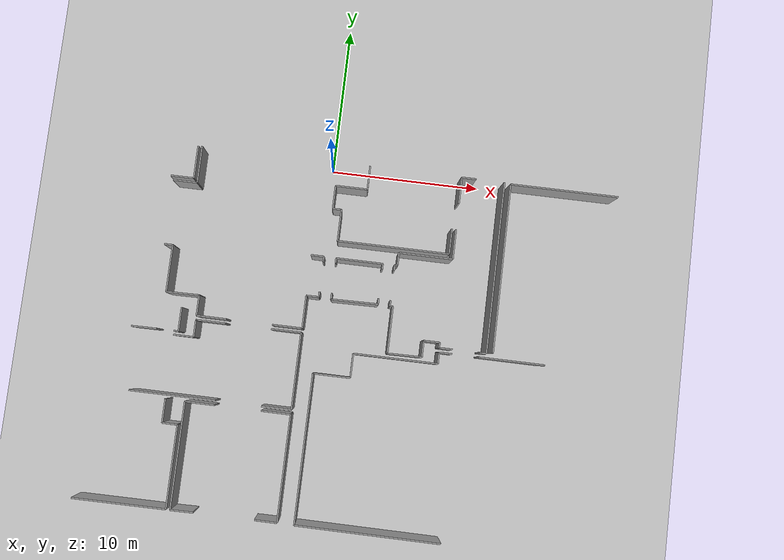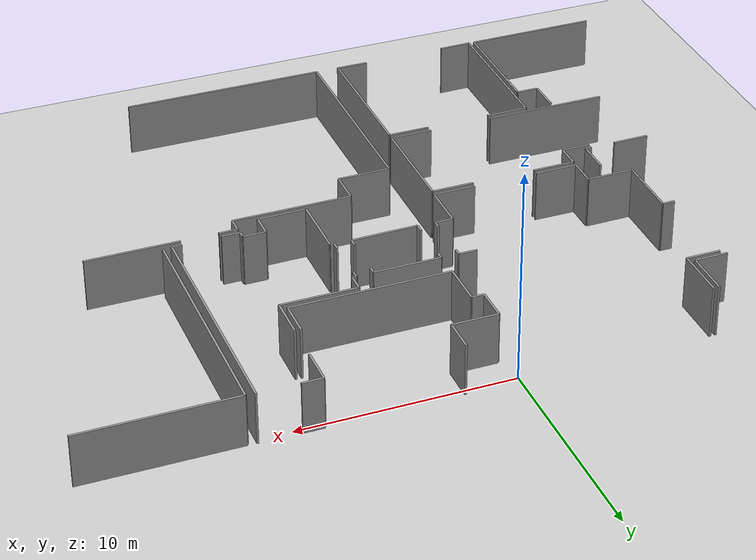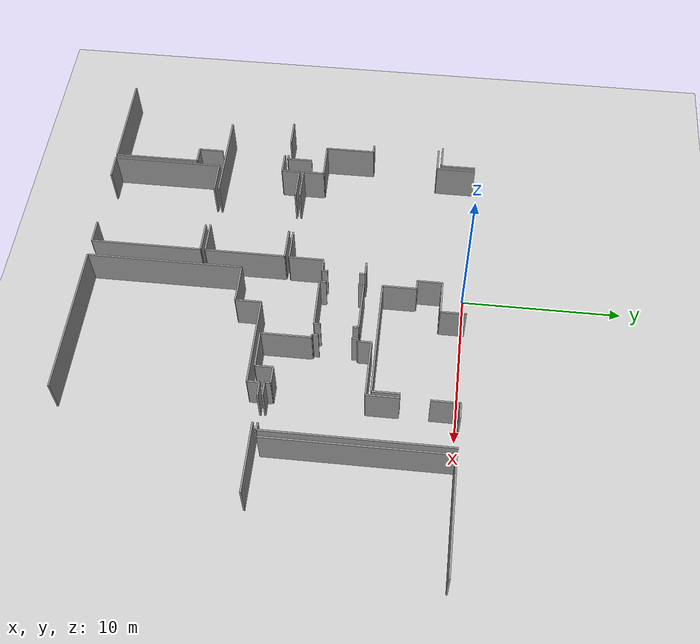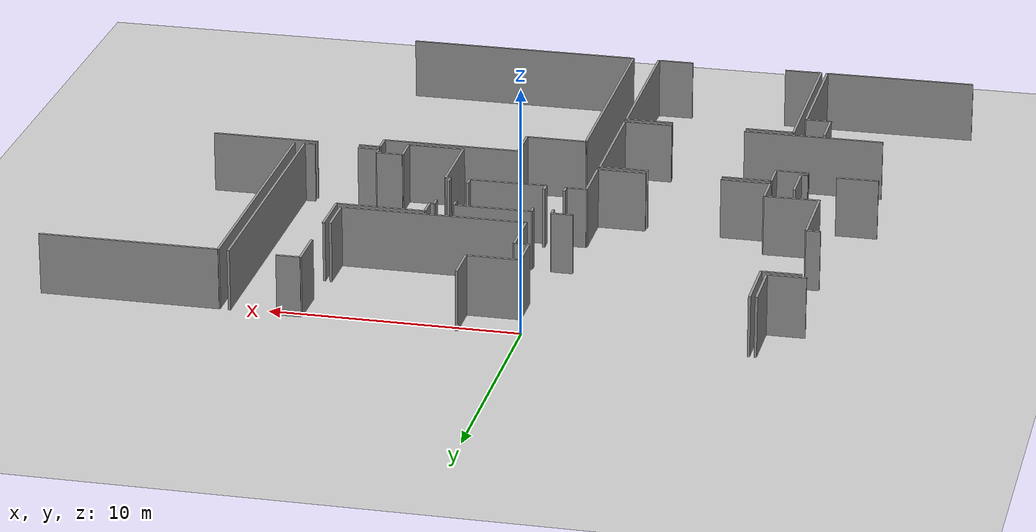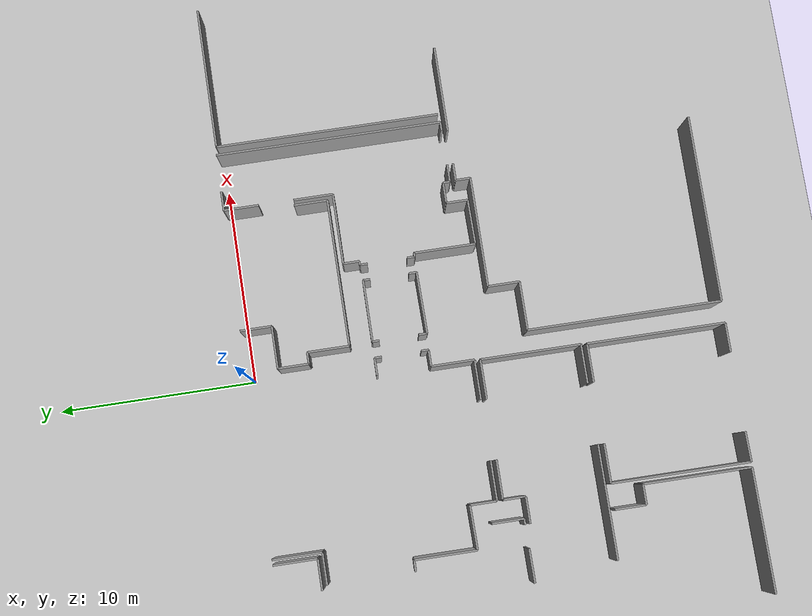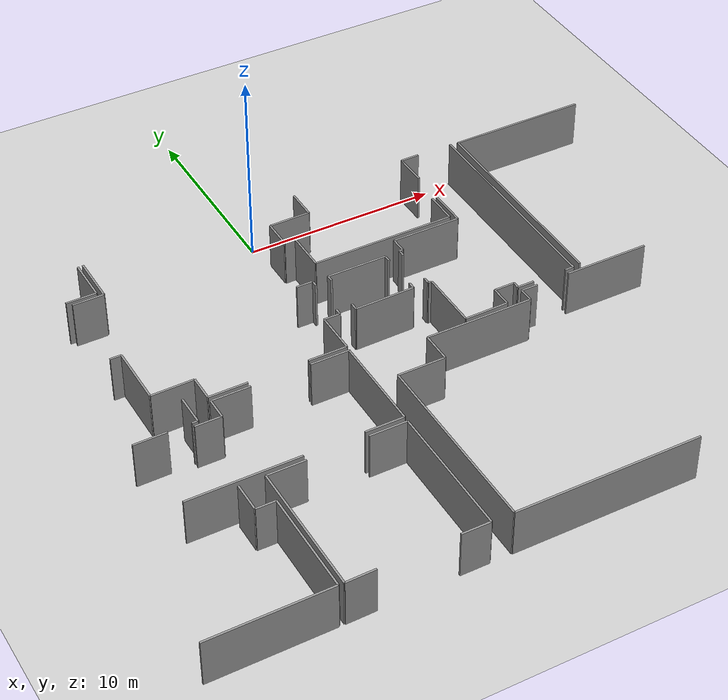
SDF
<sdf version="1.6">
 <world name="default">
  <model name="ground_plane">
   <static>1</static>
   <link name="link">
    <collision name="collision">
     <geometry><plane><normal>0 0 1</normal><size>100 100</size></plane></geometry>
     <surface><friction><ode><mu>100</mu><mu2>50</mu2></ode></friction></surface>
    </collision>
    <visual name="visual">
     <cast_shadows>0</cast_shadows>
     <geometry><plane><normal>0 0 1</normal><size>100 100</size></plane></geometry>
     <material>
      <script><uri>file://media/materials/scripts/gazebo.material</uri><name>Gazebo/Grey</name></script>
     </material>
    </visual>
   </link>
  </model>
  <model name="50057022">
   <static>1</static>
   <link name="Wall_323">
    <collision name="Wall_323_Collision">
     <geometry><box><size>1.56947433256 0.1 2.5</size></box></geometry>
     <pose>0.784737166278 0 1.25 0 0 0</pose>
    </collision>
    <visual name="Wall_323_Visual">
     <pose>0.784737166278 0 1.25 0 0 0</pose>
     <geometry><box><size>1.56947433256 0.1 2.5</size></box></geometry>
     <material>
      <script><uri>file://media/materials/scripts/gazebo.material</uri><name>Gazebo/Grey</name></script>
      <ambient>1 1 1 1</ambient>
     </material>
    </visual>
    <pose>47.562777706 -40.5619894202 0 0 0 -1.57079632679</pose>
   </link>
   <link name="Wall_324">
    <collision name="Wall_324_Collision">
     <geometry><box><size>1.01577331843 0.1 2.5</size></box></geometry>
     <pose>0.507886659215 0 1.25 0 0 0</pose>
    </collision>
    <visual name="Wall_324_Visual">
     <pose>0.507886659215 0 1.25 0 0 0</pose>
     <geometry><box><size>1.01577331843 0.1 2.5</size></box></geometry>
     <material>
      <script><uri>file://media/materials/scripts/gazebo.material</uri><name>Gazebo/Grey</name></script>
      <ambient>1 1 1 1</ambient>
     </material>
    </visual>
    <pose>47.562777706 -42.1314637528 0 0 0 0.0</pose>
   </link>
   <link name="Wall_325">
    <collision name="Wall_325_Collision">
     <geometry><box><size>5.44310021874 0.1 2.5</size></box></geometry>
     <pose>2.72155010937 0 1.25 0 0 0</pose>
    </collision>
    <visual name="Wall_325_Visual">
     <pose>2.72155010937 0 1.25 0 0 0</pose>
     <geometry><box><size>5.44310021874 0.1 2.5</size></box></geometry>
     <material>
      <script><uri>file://media/materials/scripts/gazebo.material</uri><name>Gazebo/Grey</name></script>
      <ambient>1 1 1 1</ambient>
     </material>
    </visual>
    <pose>48.5785510244 -42.1314637528 0 0 0 -1.57079632679</pose>
   </link>
   <link name="Wall_326">
    <collision name="Wall_326_Collision">
     <geometry><box><size>6.19060715635 0.1 2.5</size></box></geometry>
     <pose>3.09530357817 0 1.25 0 0 0</pose>
    </collision>
    <visual name="Wall_326_Visual">
     <pose>3.09530357817 0 1.25 0 0 0</pose>
     <geometry><box><size>6.19060715635 0.1 2.5</size></box></geometry>
     <material>
      <script><uri>file://media/materials/scripts/gazebo.material</uri><name>Gazebo/Grey</name></script>
      <ambient>1 1 1 1</ambient>
     </material>
    </visual>
    <pose>48.5785510244 -47.5745639715 0 0 0 -3.1385013784</pose>
   </link>
   <link name="Wall_358">
    <collision name="Wall_358_Collision">
     <geometry><box><size>6.99990114745 0.1 2.5</size></box></geometry>
     <pose>3.49995057372 0 1.25 0 0 0</pose>
    </collision>
    <visual name="Wall_358_Visual">
     <pose>3.49995057372 0 1.25 0 0 0</pose>
     <geometry><box><size>6.99990114745 0.1 2.5</size></box></geometry>
     <material>
      <script><uri>file://media/materials/scripts/gazebo.material</uri><name>Gazebo/Grey</name></script>
      <ambient>1 1 1 1</ambient>
     </material>
    </visual>
    <pose>48.8498886008 -47.5871106414 0 0 0 1.57079632679</pose>
   </link>
   <link name="Wall_359">
    <collision name="Wall_359_Collision">
     <geometry><box><size>1.96349045819 0.1 2.5</size></box></geometry>
     <pose>0.981745229097 0 1.25 0 0 0</pose>
    </collision>
    <visual name="Wall_359_Visual">
     <pose>0.981745229097 0 1.25 0 0 0</pose>
     <geometry><box><size>1.96349045819 0.1 2.5</size></box></geometry>
     <material>
      <script><uri>file://media/materials/scripts/gazebo.material</uri><name>Gazebo/Grey</name></script>
      <ambient>1 1 1 1</ambient>
     </material>
    </visual>
    <pose>48.8498886008 -40.5872094939 0 0 0 0.0</pose>
   </link>
   <link name="Wall_360">
    <collision name="Wall_360_Collision">
     <geometry><box><size>1.93966445896 0.1 2.5</size></box></geometry>
     <pose>0.96983222948 0 1.25 0 0 0</pose>
    </collision>
    <visual name="Wall_360_Visual">
     <pose>0.96983222948 0 1.25 0 0 0</pose>
     <geometry><box><size>1.93966445896 0.1 2.5</size></box></geometry>
     <material>
      <script><uri>file://media/materials/scripts/gazebo.material</uri><name>Gazebo/Grey</name></script>
      <ambient>1 1 1 1</ambient>
     </material>
    </visual>
    <pose>53.8769209712 -40.5872094939 0 0 0 0.0</pose>
   </link>
   <link name="Wall_361">
    <collision name="Wall_361_Collision">
     <geometry><box><size>6.97784942475 0.1 2.5</size></box></geometry>
     <pose>3.48892471238 0 1.25 0 0 0</pose>
    </collision>
    <visual name="Wall_361_Visual">
     <pose>3.48892471238 0 1.25 0 0 0</pose>
     <geometry><box><size>6.97784942475 0.1 2.5</size></box></geometry>
     <material>
      <script><uri>file://media/materials/scripts/gazebo.material</uri><name>Gazebo/Grey</name></script>
      <ambient>1 1 1 1</ambient>
     </material>
    </visual>
    <pose>55.8165854301 -40.5872094939 0 0 0 -1.57079632679</pose>
   </link>
   <link name="Wall_362">
    <collision name="Wall_362_Collision">
     <geometry><box><size>1.47860602696 0.1 2.5</size></box></geometry>
     <pose>0.739303013482 0 1.25 0 0 0</pose>
    </collision>
    <visual name="Wall_362_Visual">
     <pose>0.739303013482 0 1.25 0 0 0</pose>
     <geometry><box><size>1.47860602696 0.1 2.5</size></box></geometry>
     <material>
      <script><uri>file://media/materials/scripts/gazebo.material</uri><name>Gazebo/Grey</name></script>
      <ambient>1 1 1 1</ambient>
     </material>
    </visual>
    <pose>55.8165854301 -47.5650589187 0 0 0 3.14159265359</pose>
   </link>
   <link name="Wall_363">
    <collision name="Wall_363_Collision">
     <geometry><box><size>1.51133756027 0.1 2.5</size></box></geometry>
     <pose>0.755668780137 0 1.25 0 0 0</pose>
    </collision>
    <visual name="Wall_363_Visual">
     <pose>0.755668780137 0 1.25 0 0 0</pose>
     <geometry><box><size>1.51133756027 0.1 2.5</size></box></geometry>
     <material>
      <script><uri>file://media/materials/scripts/gazebo.material</uri><name>Gazebo/Grey</name></script>
      <ambient>1 1 1 1</ambient>
     </material>
    </visual>
    <pose>50.3610652756 -47.5650589187 0 0 0 -3.12700127057</pose>
   </link>
   <link name="Wall_376">
    <collision name="Wall_376_Collision">
     <geometry><box><size>1.34046592502 0.1 2.5</size></box></geometry>
     <pose>0.67023296251 0 1.25 0 0 0</pose>
    </collision>
    <visual name="Wall_376_Visual">
     <pose>0.67023296251 0 1.25 0 0 0</pose>
     <geometry><box><size>1.34046592502 0.1 2.5</size></box></geometry>
     <material>
      <script><uri>file://media/materials/scripts/gazebo.material</uri><name>Gazebo/Grey</name></script>
      <ambient>1 1 1 1</ambient>
     </material>
    </visual>
    <pose>47.5053671865 -36.3542926086 0 0 0 0.0</pose>
   </link>
   <link name="Wall_377">
    <collision name="Wall_377_Collision">
     <geometry><box><size>1.14060634633 0.1 2.5</size></box></geometry>
     <pose>0.570303173167 0 1.25 0 0 0</pose>
    </collision>
    <visual name="Wall_377_Visual">
     <pose>0.570303173167 0 1.25 0 0 0</pose>
     <geometry><box><size>1.14060634633 0.1 2.5</size></box></geometry>
     <material>
      <script><uri>file://media/materials/scripts/gazebo.material</uri><name>Gazebo/Grey</name></script>
      <ambient>1 1 1 1</ambient>
     </material>
    </visual>
    <pose>48.8458331115 -36.3542926086 0 0 0 1.57079632679</pose>
   </link>
   <link name="Wall_378">
    <collision name="Wall_378_Collision">
     <geometry><box><size>1.98541544685 0.1 2.5</size></box></geometry>
     <pose>0.992707723426 0 1.25 0 0 0</pose>
    </collision>
    <visual name="Wall_378_Visual">
     <pose>0.992707723426 0 1.25 0 0 0</pose>
     <geometry><box><size>1.98541544685 0.1 2.5</size></box></geometry>
     <material>
      <script><uri>file://media/materials/scripts/gazebo.material</uri><name>Gazebo/Grey</name></script>
      <ambient>1 1 1 1</ambient>
     </material>
    </visual>
    <pose>48.8458331115 -35.2136862623 0 0 0 0.0</pose>
   </link>
   <link name="Wall_379">
    <collision name="Wall_379_Collision">
     <geometry><box><size>1.98364117031 0.1 2.5</size></box></geometry>
     <pose>0.991820585156 0 1.25 0 0 0</pose>
    </collision>
    <visual name="Wall_379_Visual">
     <pose>0.991820585156 0 1.25 0 0 0</pose>
     <geometry><box><size>1.98364117031 0.1 2.5</size></box></geometry>
     <material>
      <script><uri>file://media/materials/scripts/gazebo.material</uri><name>Gazebo/Grey</name></script>
      <ambient>1 1 1 1</ambient>
     </material>
    </visual>
    <pose>53.8439701212 -35.2136862623 0 0 0 0.0</pose>
   </link>
   <link name="Wall_380">
    <collision name="Wall_380_Collision">
     <geometry><box><size>5.07367049657 0.1 2.5</size></box></geometry>
     <pose>2.53683524828 0 1.25 0 0 0</pose>
    </collision>
    <visual name="Wall_380_Visual">
     <pose>2.53683524828 0 1.25 0 0 0</pose>
     <geometry><box><size>5.07367049657 0.1 2.5</size></box></geometry>
     <material>
      <script><uri>file://media/materials/scripts/gazebo.material</uri><name>Gazebo/Grey</name></script>
      <ambient>1 1 1 1</ambient>
     </material>
    </visual>
    <pose>55.8276112915 -35.2136862623 0 0 0 -1.57079632679</pose>
   </link>
   <link name="Wall_381">
    <collision name="Wall_381_Collision">
     <geometry><box><size>1.97806487262 0.1 2.5</size></box></geometry>
     <pose>0.98903243631 0 1.25 0 0 0</pose>
    </collision>
    <visual name="Wall_381_Visual">
     <pose>0.98903243631 0 1.25 0 0 0</pose>
     <geometry><box><size>1.97806487262 0.1 2.5</size></box></geometry>
     <material>
      <script><uri>file://media/materials/scripts/gazebo.material</uri><name>Gazebo/Grey</name></script>
      <ambient>1 1 1 1</ambient>
     </material>
    </visual>
    <pose>55.8276112915 -40.2873567589 0 0 0 3.14159265359</pose>
   </link>
   <link name="Wall_382">
    <collision name="Wall_382_Collision">
     <geometry><box><size>5.71709920994 0.1 2.5</size></box></geometry>
     <pose>2.85854960497 0 1.25 0 0 0</pose>
    </collision>
    <visual name="Wall_382_Visual">
     <pose>2.85854960497 0 1.25 0 0 0</pose>
     <geometry><box><size>5.71709920994 0.1 2.5</size></box></geometry>
     <material>
      <script><uri>file://media/materials/scripts/gazebo.material</uri><name>Gazebo/Grey</name></script>
      <ambient>1 1 1 1</ambient>
     </material>
    </visual>
    <pose>50.8240247182 -40.2873567589 0 0 0 3.14159265359</pose>
   </link>
   <link name="Wall_394">
    <collision name="Wall_394_Collision">
     <geometry><box><size>1.60141131025 0.1 2.5</size></box></geometry>
     <pose>0.800705655126 0 1.25 0 0 0</pose>
    </collision>
    <visual name="Wall_394_Visual">
     <pose>0.800705655126 0 1.25 0 0 0</pose>
     <geometry><box><size>1.60141131025 0.1 2.5</size></box></geometry>
     <material>
      <script><uri>file://media/materials/scripts/gazebo.material</uri><name>Gazebo/Grey</name></script>
      <ambient>1 1 1 1</ambient>
     </material>
    </visual>
    <pose>47.7952079325 -34.5035954447 0 0 0 -1.57079632679</pose>
   </link>
   <link name="Wall_395">
    <collision name="Wall_395_Collision">
     <geometry><box><size>0.297191320239 0.1 2.5</size></box></geometry>
     <pose>0.14859566012 0 1.25 0 0 0</pose>
    </collision>
    <visual name="Wall_395_Visual">
     <pose>0.14859566012 0 1.25 0 0 0</pose>
     <geometry><box><size>0.297191320239 0.1 2.5</size></box></geometry>
     <material>
      <script><uri>file://media/materials/scripts/gazebo.material</uri><name>Gazebo/Grey</name></script>
      <ambient>1 1 1 1</ambient>
     </material>
    </visual>
    <pose>47.7952079325 -36.1050067549 0 0 0 3.14159265359</pose>
   </link>
   <link name="Wall_396">
    <collision name="Wall_396_Collision">
     <geometry><box><size>1.69272147585 0.1 2.5</size></box></geometry>
     <pose>0.846360737925 0 1.25 0 0 0</pose>
    </collision>
    <visual name="Wall_396_Visual">
     <pose>0.846360737925 0 1.25 0 0 0</pose>
     <geometry><box><size>1.69272147585 0.1 2.5</size></box></geometry>
     <material>
      <script><uri>file://media/materials/scripts/gazebo.material</uri><name>Gazebo/Grey</name></script>
      <ambient>1 1 1 1</ambient>
     </material>
    </visual>
    <pose>46.3430893196 -36.1050067549 0 0 0 -3.1330573712</pose>
   </link>
   <link name="Wall_412">
    <collision name="Wall_412_Collision">
     <geometry><box><size>2.21822587554 0.1 2.5</size></box></geometry>
     <pose>1.10911293777 0 1.25 0 0 0</pose>
    </collision>
    <visual name="Wall_412_Visual">
     <pose>1.10911293777 0 1.25 0 0 0</pose>
     <geometry><box><size>2.21822587554 0.1 2.5</size></box></geometry>
     <material>
      <script><uri>file://media/materials/scripts/gazebo.material</uri><name>Gazebo/Grey</name></script>
      <ambient>1 1 1 1</ambient>
     </material>
    </visual>
    <pose>47.408035445 -23.629814943 0 0 0 -1.57079632679</pose>
   </link>
   <link name="Wall_413">
    <collision name="Wall_413_Collision">
     <geometry><box><size>1.55388604582 0.1 2.5</size></box></geometry>
     <pose>0.776943022911 0 1.25 0 0 0</pose>
    </collision>
    <visual name="Wall_413_Visual">
     <pose>0.776943022911 0 1.25 0 0 0</pose>
     <geometry><box><size>1.55388604582 0.1 2.5</size></box></geometry>
     <material>
      <script><uri>file://media/materials/scripts/gazebo.material</uri><name>Gazebo/Grey</name></script>
      <ambient>1 1 1 1</ambient>
     </material>
    </visual>
    <pose>47.408035445 -25.8480408185 0 0 0 3.14159265359</pose>
   </link>
   <link name="Wall_427">
    <collision name="Wall_427_Collision">
     <geometry><box><size>3.13349910146 0.1 2.5</size></box></geometry>
     <pose>1.56674955073 0 1.25 0 0 0</pose>
    </collision>
    <visual name="Wall_427_Visual">
     <pose>1.56674955073 0 1.25 0 0 0</pose>
     <geometry><box><size>3.13349910146 0.1 2.5</size></box></geometry>
     <material>
      <script><uri>file://media/materials/scripts/gazebo.material</uri><name>Gazebo/Grey</name></script>
      <ambient>1 1 1 1</ambient>
     </material>
    </visual>
    <pose>46.6381261612 -33.6085996649 0 0 0 1.57079632679</pose>
   </link>
   <link name="Wall_428">
    <collision name="Wall_428_Collision">
     <geometry><box><size>0.56840216259 0.1 2.5</size></box></geometry>
     <pose>0.284201081295 0 1.25 0 0 0</pose>
    </collision>
    <visual name="Wall_428_Visual">
     <pose>0.284201081295 0 1.25 0 0 0</pose>
     <geometry><box><size>0.56840216259 0.1 2.5</size></box></geometry>
     <material>
      <script><uri>file://media/materials/scripts/gazebo.material</uri><name>Gazebo/Grey</name></script>
      <ambient>1 1 1 1</ambient>
     </material>
    </visual>
    <pose>46.6381261612 -30.4751005635 0 0 0 3.14159265359</pose>
   </link>
   <link name="Wall_430">
    <collision name="Wall_430_Collision">
     <geometry><box><size>1.60318558679 0.1 2.5</size></box></geometry>
     <pose>0.801592793396 0 1.25 0 0 0</pose>
    </collision>
    <visual name="Wall_430_Visual">
     <pose>0.801592793396 0 1.25 0 0 0</pose>
     <geometry><box><size>1.60318558679 0.1 2.5</size></box></geometry>
     <material>
      <script><uri>file://media/materials/scripts/gazebo.material</uri><name>Gazebo/Grey</name></script>
      <ambient>1 1 1 1</ambient>
     </material>
    </visual>
    <pose>46.0697239986 -26.1173506503 0 0 0 0.0</pose>
   </link>
   <link name="Wall_431">
    <collision name="Wall_431_Collision">
     <geometry><box><size>2.49222486674 0.1 2.5</size></box></geometry>
     <pose>1.24611243337 0 1.25 0 0 0</pose>
    </collision>
    <visual name="Wall_431_Visual">
     <pose>1.24611243337 0 1.25 0 0 0</pose>
     <geometry><box><size>2.49222486674 0.1 2.5</size></box></geometry>
     <material>
      <script><uri>file://media/materials/scripts/gazebo.material</uri><name>Gazebo/Grey</name></script>
      <ambient>1 1 1 1</ambient>
     </material>
    </visual>
    <pose>47.6729095854 -26.1173506503 0 0 0 1.57079632679</pose>
   </link>
   <link name="Wall_435">
    <collision name="Wall_435_Collision">
     <geometry><box><size>0.864959812636 0.1 2.5</size></box></geometry>
     <pose>0.432479906318 0 1.25 0 0 0</pose>
    </collision>
    <visual name="Wall_435_Visual">
     <pose>0.432479906318 0 1.25 0 0 0</pose>
     <geometry><box><size>0.864959812636 0.1 2.5</size></box></geometry>
     <material>
      <script><uri>file://media/materials/scripts/gazebo.material</uri><name>Gazebo/Grey</name></script>
      <ambient>1 1 1 1</ambient>
     </material>
    </visual>
    <pose>55.8295123021 -30.0378681307 0 0 0 0.0</pose>
   </link>
   <link name="Wall_436">
    <collision name="Wall_436_Collision">
     <geometry><box><size>0.349785946209 0.1 2.5</size></box></geometry>
     <pose>0.174892973104 0 1.25 0 0 0</pose>
    </collision>
    <visual name="Wall_436_Visual">
     <pose>0.174892973104 0 1.25 0 0 0</pose>
     <geometry><box><size>0.349785946209 0.1 2.5</size></box></geometry>
     <material>
      <script><uri>file://media/materials/scripts/gazebo.material</uri><name>Gazebo/Grey</name></script>
      <ambient>1 1 1 1</ambient>
     </material>
    </visual>
    <pose>56.6944721147 -30.0378681307 0 0 0 -1.57079632679</pose>
   </link>
   <link name="Wall_437">
    <collision name="Wall_437_Collision">
     <geometry><box><size>0.364233626596 0.1 2.5</size></box></geometry>
     <pose>0.182116813298 0 1.25 0 0 0</pose>
    </collision>
    <visual name="Wall_437_Visual">
     <pose>0.182116813298 0 1.25 0 0 0</pose>
     <geometry><box><size>0.364233626596 0.1 2.5</size></box></geometry>
     <material>
      <script><uri>file://media/materials/scripts/gazebo.material</uri><name>Gazebo/Grey</name></script>
      <ambient>1 1 1 1</ambient>
     </material>
    </visual>
    <pose>56.6944721147 -32.3856161936 0 0 0 -1.57079632679</pose>
   </link>
   <link name="Wall_438">
    <collision name="Wall_438_Collision">
     <geometry><box><size>0.832896100901 0.1 2.5</size></box></geometry>
     <pose>0.41644805045 0 1.25 0 0 0</pose>
    </collision>
    <visual name="Wall_438_Visual">
     <pose>0.41644805045 0 1.25 0 0 0</pose>
     <geometry><box><size>0.832896100901 0.1 2.5</size></box></geometry>
     <material>
      <script><uri>file://media/materials/scripts/gazebo.material</uri><name>Gazebo/Grey</name></script>
      <ambient>1 1 1 1</ambient>
     </material>
    </visual>
    <pose>56.6944721147 -32.7498498202 0 0 0 3.14159265359</pose>
   </link>
   <link name="Wall_439">
    <collision name="Wall_439_Collision">
     <geometry><box><size>2.18489482342 0.1 2.5</size></box></geometry>
     <pose>1.09244741171 0 1.25 0 0 0</pose>
    </collision>
    <visual name="Wall_439_Visual">
     <pose>1.09244741171 0 1.25 0 0 0</pose>
     <geometry><box><size>2.18489482342 0.1 2.5</size></box></geometry>
     <material>
      <script><uri>file://media/materials/scripts/gazebo.material</uri><name>Gazebo/Grey</name></script>
      <ambient>1 1 1 1</ambient>
     </material>
    </visual>
    <pose>55.8615760138 -32.7498498202 0 0 0 -1.57079632679</pose>
   </link>
   <link name="Wall_440">
    <collision name="Wall_440_Collision">
     <geometry><box><size>1.98364117031 0.1 2.5</size></box></geometry>
     <pose>0.991820585156 0 1.25 0 0 0</pose>
    </collision>
    <visual name="Wall_440_Visual">
     <pose>0.991820585156 0 1.25 0 0 0</pose>
     <geometry><box><size>1.98364117031 0.1 2.5</size></box></geometry>
     <material>
      <script><uri>file://media/materials/scripts/gazebo.material</uri><name>Gazebo/Grey</name></script>
      <ambient>1 1 1 1</ambient>
     </material>
    </visual>
    <pose>55.8615760138 -34.9347446436 0 0 0 3.14159265359</pose>
   </link>
   <link name="Wall_441">
    <collision name="Wall_441_Collision">
     <geometry><box><size>1.98972440416 0.1 2.5</size></box></geometry>
     <pose>0.99486220208 0 1.25 0 0 0</pose>
    </collision>
    <visual name="Wall_441_Visual">
     <pose>0.99486220208 0 1.25 0 0 0</pose>
     <geometry><box><size>1.98972440416 0.1 2.5</size></box></geometry>
     <material>
      <script><uri>file://media/materials/scripts/gazebo.material</uri><name>Gazebo/Grey</name></script>
      <ambient>1 1 1 1</ambient>
     </material>
    </visual>
    <pose>50.829854484 -34.9347446436 0 0 0 3.14159265359</pose>
   </link>
   <link name="Wall_442">
    <collision name="Wall_442_Collision">
     <geometry><box><size>1.35592747771 0.1 2.5</size></box></geometry>
     <pose>0.677963738857 0 1.25 0 0 0</pose>
    </collision>
    <visual name="Wall_442_Visual">
     <pose>0.677963738857 0 1.25 0 0 0</pose>
     <geometry><box><size>1.35592747771 0.1 2.5</size></box></geometry>
     <material>
      <script><uri>file://media/materials/scripts/gazebo.material</uri><name>Gazebo/Grey</name></script>
      <ambient>1 1 1 1</ambient>
     </material>
    </visual>
    <pose>48.8401300798 -34.9347446436 0 0 0 1.57079632679</pose>
   </link>
   <link name="Wall_443">
    <collision name="Wall_443_Collision">
     <geometry><box><size>2.20220531623 0.1 2.5</size></box></geometry>
     <pose>1.10110265812 0 1.25 0 0 0</pose>
    </collision>
    <visual name="Wall_443_Visual">
     <pose>1.10110265812 0 1.25 0 0 0</pose>
     <geometry><box><size>2.20220531623 0.1 2.5</size></box></geometry>
     <material>
      <script><uri>file://media/materials/scripts/gazebo.material</uri><name>Gazebo/Grey</name></script>
      <ambient>1 1 1 1</ambient>
     </material>
    </visual>
    <pose>48.8401300798 -33.5788171659 0 0 0 -3.12806829837</pose>
   </link>
   <link name="Wall_444">
    <collision name="Wall_444_Collision">
     <geometry><box><size>9.81086212097 0.1 2.5</size></box></geometry>
     <pose>4.90543106049 0 1.25 0 0 0</pose>
    </collision>
    <visual name="Wall_444_Visual">
     <pose>4.90543106049 0 1.25 0 0 0</pose>
     <geometry><box><size>9.81086212097 0.1 2.5</size></box></geometry>
     <material>
      <script><uri>file://media/materials/scripts/gazebo.material</uri><name>Gazebo/Grey</name></script>
      <ambient>1 1 1 1</ambient>
     </material>
    </visual>
    <pose>56.9289300859 -47.5831818862 0 0 0 1.57079632679</pose>
   </link>
   <link name="Wall_445">
    <collision name="Wall_445_Collision">
     <geometry><box><size>2.46725826116 0.1 2.5</size></box></geometry>
     <pose>1.23362913058 0 1.25 0 0 0</pose>
    </collision>
    <visual name="Wall_445_Visual">
     <pose>1.23362913058 0 1.25 0 0 0</pose>
     <geometry><box><size>2.46725826116 0.1 2.5</size></box></geometry>
     <material>
      <script><uri>file://media/materials/scripts/gazebo.material</uri><name>Gazebo/Grey</name></script>
      <ambient>1 1 1 1</ambient>
     </material>
    </visual>
    <pose>56.9289300859 -37.7723197652 0 0 0 0.0</pose>
   </link>
   <link name="Wall_446">
    <collision name="Wall_446_Collision">
     <geometry><box><size>1.59976376775 0.1 2.5</size></box></geometry>
     <pose>0.799881883876 0 1.25 0 0 0</pose>
    </collision>
    <visual name="Wall_446_Visual">
     <pose>0.799881883876 0 1.25 0 0 0</pose>
     <geometry><box><size>1.59976376775 0.1 2.5</size></box></geometry>
     <material>
      <script><uri>file://media/materials/scripts/gazebo.material</uri><name>Gazebo/Grey</name></script>
      <ambient>1 1 1 1</ambient>
     </material>
    </visual>
    <pose>59.3961883471 -37.7723197652 0 0 0 1.57079632679</pose>
   </link>
   <link name="Wall_447">
    <collision name="Wall_447_Collision">
     <geometry><box><size>5.58960476723 0.1 2.5</size></box></geometry>
     <pose>2.79480238361 0 1.25 0 0 0</pose>
    </collision>
    <visual name="Wall_447_Visual">
     <pose>2.79480238361 0 1.25 0 0 0</pose>
     <geometry><box><size>5.58960476723 0.1 2.5</size></box></geometry>
     <material>
      <script><uri>file://media/materials/scripts/gazebo.material</uri><name>Gazebo/Grey</name></script>
      <ambient>1 1 1 1</ambient>
     </material>
    </visual>
    <pose>59.3961883471 -36.1725559974 0 0 0 0.0</pose>
   </link>
   <link name="Wall_448">
    <collision name="Wall_448_Collision">
     <geometry><box><size>0.751659582234 0.1 2.5</size></box></geometry>
     <pose>0.375829791117 0 1.25 0 0 0</pose>
    </collision>
    <visual name="Wall_448_Visual">
     <pose>0.375829791117 0 1.25 0 0 0</pose>
     <geometry><box><size>0.751659582234 0.1 2.5</size></box></geometry>
     <material>
      <script><uri>file://media/materials/scripts/gazebo.material</uri><name>Gazebo/Grey</name></script>
      <ambient>1 1 1 1</ambient>
     </material>
    </visual>
    <pose>64.9857931143 -36.1725559974 0 0 0 1.57079632679</pose>
   </link>
   <link name="Wall_449">
    <collision name="Wall_449_Collision">
     <geometry><box><size>0.867367759368 0.1 2.5</size></box></geometry>
     <pose>0.433683879684 0 1.25 0 0 0</pose>
    </collision>
    <visual name="Wall_449_Visual">
     <pose>0.433683879684 0 1.25 0 0 0</pose>
     <geometry><box><size>0.867367759368 0.1 2.5</size></box></geometry>
     <material>
      <script><uri>file://media/materials/scripts/gazebo.material</uri><name>Gazebo/Grey</name></script>
      <ambient>1 1 1 1</ambient>
     </material>
    </visual>
    <pose>64.9857931143 -35.4208964152 0 0 0 0.0</pose>
   </link>
   <link name="Wall_450">
    <collision name="Wall_450_Collision">
     <geometry><box><size>4.37257779569 0.1 2.5</size></box></geometry>
     <pose>2.18628889784 0 1.25 0 0 0</pose>
    </collision>
    <visual name="Wall_450_Visual">
     <pose>2.18628889784 0 1.25 0 0 0</pose>
     <geometry><box><size>4.37257779569 0.1 2.5</size></box></geometry>
     <material>
      <script><uri>file://media/materials/scripts/gazebo.material</uri><name>Gazebo/Grey</name></script>
      <ambient>1 1 1 1</ambient>
     </material>
    </visual>
    <pose>67.5972747112 -35.4208964152 0 0 0 0.0</pose>
   </link>
   <link name="Wall_457">
    <collision name="Wall_457_Collision">
     <geometry><box><size>9.52463650475 0.1 2.5</size></box></geometry>
     <pose>4.76231825237 0 1.25 0 0 0</pose>
    </collision>
    <visual name="Wall_457_Visual">
     <pose>4.76231825237 0 1.25 0 0 0</pose>
     <geometry><box><size>9.52463650475 0.1 2.5</size></box></geometry>
     <material>
      <script><uri>file://media/materials/scripts/gazebo.material</uri><name>Gazebo/Grey</name></script>
      <ambient>1 1 1 1</ambient>
     </material>
    </visual>
    <pose>66.4535000139 -47.618794151 0 0 0 3.13785368174</pose>
   </link>
   <link name="Wall_473">
    <collision name="Wall_473_Collision">
     <geometry><box><size>3.11892468703 0.1 2.5</size></box></geometry>
     <pose>1.55946234352 0 1.25 0 0 0</pose>
    </collision>
    <visual name="Wall_473_Visual">
     <pose>1.55946234352 0 1.25 0 0 0</pose>
     <geometry><box><size>3.11892468703 0.1 2.5</size></box></geometry>
     <material>
      <script><uri>file://media/materials/scripts/gazebo.material</uri><name>Gazebo/Grey</name></script>
      <ambient>1 1 1 1</ambient>
     </material>
    </visual>
    <pose>61.6206241905 -35.8967827297 0 0 0 1.57079632679</pose>
   </link>
   <link name="Wall_474">
    <collision name="Wall_474_Collision">
     <geometry><box><size>0.18946738753 0.1 2.5</size></box></geometry>
     <pose>0.0947336937649 0 1.25 0 0 0</pose>
    </collision>
    <visual name="Wall_474_Visual">
     <pose>0.0947336937649 0 1.25 0 0 0</pose>
     <geometry><box><size>0.18946738753 0.1 2.5</size></box></geometry>
     <material>
      <script><uri>file://media/materials/scripts/gazebo.material</uri><name>Gazebo/Grey</name></script>
      <ambient>1 1 1 1</ambient>
     </material>
    </visual>
    <pose>61.6206241905 -32.7778580427 0 0 0 3.14159265359</pose>
   </link>
   <link name="Wall_475">
    <collision name="Wall_475_Collision">
     <geometry><box><size>0.37893477506 0.1 2.5</size></box></geometry>
     <pose>0.18946738753 0 1.25 0 0 0</pose>
    </collision>
    <visual name="Wall_475_Visual">
     <pose>0.18946738753 0 1.25 0 0 0</pose>
     <geometry><box><size>0.37893477506 0.1 2.5</size></box></geometry>
     <material>
      <script><uri>file://media/materials/scripts/gazebo.material</uri><name>Gazebo/Grey</name></script>
      <ambient>1 1 1 1</ambient>
     </material>
    </visual>
    <pose>61.431156803 -32.7778580427 0 0 0 1.57079632679</pose>
   </link>
   <link name="Wall_476">
    <collision name="Wall_476_Collision">
     <geometry><box><size>0.374879285828 0.1 2.5</size></box></geometry>
     <pose>0.187439642914 0 1.25 0 0 0</pose>
    </collision>
    <visual name="Wall_476_Visual">
     <pose>0.187439642914 0 1.25 0 0 0</pose>
     <geometry><box><size>0.374879285828 0.1 2.5</size></box></geometry>
     <material>
      <script><uri>file://media/materials/scripts/gazebo.material</uri><name>Gazebo/Grey</name></script>
      <ambient>1 1 1 1</ambient>
     </material>
    </visual>
    <pose>61.431156803 -30.3877808109 0 0 0 1.57079632679</pose>
   </link>
   <link name="Wall_477">
    <collision name="Wall_477_Collision">
     <geometry><box><size>0.184778228106 0.1 2.5</size></box></geometry>
     <pose>0.092389114053 0 1.25 0 0 0</pose>
    </collision>
    <visual name="Wall_477_Visual">
     <pose>0.092389114053 0 1.25 0 0 0</pose>
     <geometry><box><size>0.184778228106 0.1 2.5</size></box></geometry>
     <material>
      <script><uri>file://media/materials/scripts/gazebo.material</uri><name>Gazebo/Grey</name></script>
      <ambient>1 1 1 1</ambient>
     </material>
    </visual>
    <pose>61.431156803 -30.0129015251 0 0 0 0.0</pose>
   </link>
   <link name="Wall_478">
    <collision name="Wall_478_Collision">
     <geometry><box><size>0.825038590515 0.1 2.5</size></box></geometry>
     <pose>0.412519295257 0 1.25 0 0 0</pose>
    </collision>
    <visual name="Wall_478_Visual">
     <pose>0.412519295257 0 1.25 0 0 0</pose>
     <geometry><box><size>0.825038590515 0.1 2.5</size></box></geometry>
     <material>
      <script><uri>file://media/materials/scripts/gazebo.material</uri><name>Gazebo/Grey</name></script>
      <ambient>1 1 1 1</ambient>
     </material>
    </visual>
    <pose>61.6159350311 -30.0129015251 0 0 0 1.57079632679</pose>
   </link>
   <link name="Wall_479">
    <collision name="Wall_479_Collision">
     <geometry><box><size>3.58555941672 0.1 2.5</size></box></geometry>
     <pose>1.79277970836 0 1.25 0 0 0</pose>
    </collision>
    <visual name="Wall_479_Visual">
     <pose>1.79277970836 0 1.25 0 0 0</pose>
     <geometry><box><size>3.58555941672 0.1 2.5</size></box></geometry>
     <material>
      <script><uri>file://media/materials/scripts/gazebo.material</uri><name>Gazebo/Grey</name></script>
      <ambient>1 1 1 1</ambient>
     </material>
    </visual>
    <pose>61.6159350311 -29.1878629346 0 0 0 0.0</pose>
   </link>
   <link name="Wall_480">
    <collision name="Wall_480_Collision">
     <geometry><box><size>1.9964413082 0.1 2.5</size></box></geometry>
     <pose>0.9982206541 0 1.25 0 0 0</pose>
    </collision>
    <visual name="Wall_480_Visual">
     <pose>0.9982206541 0 1.25 0 0 0</pose>
     <geometry><box><size>1.9964413082 0.1 2.5</size></box></geometry>
     <material>
      <script><uri>file://media/materials/scripts/gazebo.material</uri><name>Gazebo/Grey</name></script>
      <ambient>1 1 1 1</ambient>
     </material>
    </visual>
    <pose>65.2014944478 -29.1878629346 0 0 0 1.57079632679</pose>
   </link>
   <link name="Wall_481">
    <collision name="Wall_481_Collision">
     <geometry><box><size>1.76325067739 0.1 2.5</size></box></geometry>
     <pose>0.881625338697 0 1.25 0 0 0</pose>
    </collision>
    <visual name="Wall_481_Visual">
     <pose>0.881625338697 0 1.25 0 0 0</pose>
     <geometry><box><size>1.76325067739 0.1 2.5</size></box></geometry>
     <material>
      <script><uri>file://media/materials/scripts/gazebo.material</uri><name>Gazebo/Grey</name></script>
      <ambient>1 1 1 1</ambient>
     </material>
    </visual>
    <pose>65.2014944478 -25.4092875773 0 0 0 1.57079632679</pose>
   </link>
   <link name="Wall_482">
    <collision name="Wall_482_Collision">
     <geometry><box><size>0.971289670922 0.1 2.5</size></box></geometry>
     <pose>0.485644835461 0 1.25 0 0 0</pose>
    </collision>
    <visual name="Wall_482_Visual">
     <pose>0.485644835461 0 1.25 0 0 0</pose>
     <geometry><box><size>0.971289670922 0.1 2.5</size></box></geometry>
     <material>
      <script><uri>file://media/materials/scripts/gazebo.material</uri><name>Gazebo/Grey</name></script>
      <ambient>1 1 1 1</ambient>
     </material>
    </visual>
    <pose>65.2014944478 -23.6460368999 0 0 0 0.0</pose>
   </link>
   <link name="Wall_483">
    <collision name="Wall_483_Collision">
     <geometry><box><size>11.4783018653 0.1 2.5</size></box></geometry>
     <pose>5.73915093264 0 1.25 0 0 0</pose>
    </collision>
    <visual name="Wall_483_Visual">
     <pose>5.73915093264 0 1.25 0 0 0</pose>
     <geometry><box><size>11.4783018653 0.1 2.5</size></box></geometry>
     <material>
      <script><uri>file://media/materials/scripts/gazebo.material</uri><name>Gazebo/Grey</name></script>
      <ambient>1 1 1 1</ambient>
     </material>
    </visual>
    <pose>68.0798779298 -23.6460368999 0 0 0 -1.57079632679</pose>
   </link>
   <link name="Wall_484">
    <collision name="Wall_484_Collision">
     <geometry><box><size>0.454594996033 0.1 2.5</size></box></geometry>
     <pose>0.227297498017 0 1.25 0 0 0</pose>
    </collision>
    <visual name="Wall_484_Visual">
     <pose>0.227297498017 0 1.25 0 0 0</pose>
     <geometry><box><size>0.454594996033 0.1 2.5</size></box></geometry>
     <material>
      <script><uri>file://media/materials/scripts/gazebo.material</uri><name>Gazebo/Grey</name></script>
      <ambient>1 1 1 1</ambient>
     </material>
    </visual>
    <pose>68.0798779298 -35.1243387652 0 0 0 3.14159265359</pose>
   </link>
   <link name="Wall_485">
    <collision name="Wall_485_Collision">
     <geometry><box><size>0.874464865523 0.1 2.5</size></box></geometry>
     <pose>0.437232432761 0 1.25 0 0 0</pose>
    </collision>
    <visual name="Wall_485_Visual">
     <pose>0.437232432761 0 1.25 0 0 0</pose>
     <geometry><box><size>0.874464865523 0.1 2.5</size></box></geometry>
     <material>
      <script><uri>file://media/materials/scripts/gazebo.material</uri><name>Gazebo/Grey</name></script>
      <ambient>1 1 1 1</ambient>
     </material>
    </visual>
    <pose>65.8326299594 -35.1243387652 0 0 0 3.14159265359</pose>
   </link>
   <link name="Wall_486">
    <collision name="Wall_486_Collision">
     <geometry><box><size>0.349785946209 0.1 2.5</size></box></geometry>
     <pose>0.174892973104 0 1.25 0 0 0</pose>
    </collision>
    <visual name="Wall_486_Visual">
     <pose>0.174892973104 0 1.25 0 0 0</pose>
     <geometry><box><size>0.349785946209 0.1 2.5</size></box></geometry>
     <material>
      <script><uri>file://media/materials/scripts/gazebo.material</uri><name>Gazebo/Grey</name></script>
      <ambient>1 1 1 1</ambient>
     </material>
    </visual>
    <pose>64.9581650939 -35.1243387652 0 0 0 1.57079632679</pose>
   </link>
   <link name="Wall_487">
    <collision name="Wall_487_Collision">
     <geometry><box><size>1.06393225305 0.1 2.5</size></box></geometry>
     <pose>0.531966126526 0 1.25 0 0 0</pose>
    </collision>
    <visual name="Wall_487_Visual">
     <pose>0.531966126526 0 1.25 0 0 0</pose>
     <geometry><box><size>1.06393225305 0.1 2.5</size></box></geometry>
     <material>
      <script><uri>file://media/materials/scripts/gazebo.material</uri><name>Gazebo/Grey</name></script>
      <ambient>1 1 1 1</ambient>
     </material>
    </visual>
    <pose>64.9581650939 -34.7745528189 0 0 0 3.14159265359</pose>
   </link>
   <link name="Wall_488">
    <collision name="Wall_488_Collision">
     <geometry><box><size>1.0930810819 0.1 2.5</size></box></geometry>
     <pose>0.546540540952 0 1.25 0 0 0</pose>
    </collision>
    <visual name="Wall_488_Visual">
     <pose>0.546540540952 0 1.25 0 0 0</pose>
     <geometry><box><size>1.0930810819 0.1 2.5</size></box></geometry>
     <material>
      <script><uri>file://media/materials/scripts/gazebo.material</uri><name>Gazebo/Grey</name></script>
      <ambient>1 1 1 1</ambient>
     </material>
    </visual>
    <pose>63.8942328408 -34.7745528189 0 0 0 -1.57079632679</pose>
   </link>
   <link name="Wall_489">
    <collision name="Wall_489_Collision">
     <geometry><box><size>2.27379549415 0.1 2.5</size></box></geometry>
     <pose>1.13689774707 0 1.25 0 0 0</pose>
    </collision>
    <visual name="Wall_489_Visual">
     <pose>1.13689774707 0 1.25 0 0 0</pose>
     <geometry><box><size>2.27379549415 0.1 2.5</size></box></geometry>
     <material>
      <script><uri>file://media/materials/scripts/gazebo.material</uri><name>Gazebo/Grey</name></script>
      <ambient>1 1 1 1</ambient>
     </material>
    </visual>
    <pose>63.8942328408 -35.8676339008 0 0 0 -3.12877284312</pose>
   </link>
   <link name="Wall_490">
    <collision name="Wall_490_Collision">
     <geometry><box><size>0.416574784489 0.1 2.5</size></box></geometry>
     <pose>0.208287392244 0 1.25 0 0 0</pose>
    </collision>
    <visual name="Wall_490_Visual">
     <pose>0.208287392244 0 1.25 0 0 0</pose>
     <geometry><box><size>0.416574784489 0.1 2.5</size></box></geometry>
     <material>
      <script><uri>file://media/materials/scripts/gazebo.material</uri><name>Gazebo/Grey</name></script>
      <ambient>1 1 1 1</ambient>
     </material>
    </visual>
    <pose>57.5160888862 -32.8043454567 0 0 0 1.57079632679</pose>
   </link>
   <link name="Wall_491">
    <collision name="Wall_491_Collision">
     <geometry><box><size>0.346490861208 0.1 2.5</size></box></geometry>
     <pose>0.173245430604 0 1.25 0 0 0</pose>
    </collision>
    <visual name="Wall_491_Visual">
     <pose>0.173245430604 0 1.25 0 0 0</pose>
     <geometry><box><size>0.346490861208 0.1 2.5</size></box></geometry>
     <material>
      <script><uri>file://media/materials/scripts/gazebo.material</uri><name>Gazebo/Grey</name></script>
      <ambient>1 1 1 1</ambient>
     </material>
    </visual>
    <pose>57.5160888862 -30.3985532042 0 0 0 1.57079632679</pose>
   </link>
   <link name="Wall_492">
    <collision name="Wall_492_Collision">
     <geometry><box><size>3.11778408068 0.1 2.5</size></box></geometry>
     <pose>1.55889204034 0 1.25 0 0 0</pose>
    </collision>
    <visual name="Wall_492_Visual">
     <pose>1.55889204034 0 1.25 0 0 0</pose>
     <geometry><box><size>3.11778408068 0.1 2.5</size></box></geometry>
     <material>
      <script><uri>file://media/materials/scripts/gazebo.material</uri><name>Gazebo/Grey</name></script>
      <ambient>1 1 1 1</ambient>
     </material>
    </visual>
    <pose>57.5160888862 -30.052062343 0 0 0 0.0</pose>
   </link>
   <link name="Wall_493">
    <collision name="Wall_493_Collision">
     <geometry><box><size>0.349912680247 0.1 2.5</size></box></geometry>
     <pose>0.174956340124 0 1.25 0 0 0</pose>
    </collision>
    <visual name="Wall_493_Visual">
     <pose>0.174956340124 0 1.25 0 0 0</pose>
     <geometry><box><size>0.349912680247 0.1 2.5</size></box></geometry>
     <material>
      <script><uri>file://media/materials/scripts/gazebo.material</uri><name>Gazebo/Grey</name></script>
      <ambient>1 1 1 1</ambient>
     </material>
    </visual>
    <pose>60.6338729669 -30.052062343 0 0 0 -1.57079632679</pose>
   </link>
   <link name="Wall_494">
    <collision name="Wall_494_Collision">
     <geometry><box><size>0.3905943066 0.1 2.5</size></box></geometry>
     <pose>0.1952971533 0 1.25 0 0 0</pose>
    </collision>
    <visual name="Wall_494_Visual">
     <pose>0.1952971533 0 1.25 0 0 0</pose>
     <geometry><box><size>0.3905943066 0.1 2.5</size></box></geometry>
     <material>
      <script><uri>file://media/materials/scripts/gazebo.material</uri><name>Gazebo/Grey</name></script>
      <ambient>1 1 1 1</ambient>
     </material>
    </visual>
    <pose>60.6338729669 -32.3644516091 0 0 0 -1.57079632679</pose>
   </link>
   <link name="Wall_495">
    <collision name="Wall_495_Collision">
     <geometry><box><size>3.1181738275 0.1 2.5</size></box></geometry>
     <pose>1.55908691375 0 1.25 0 0 0</pose>
    </collision>
    <visual name="Wall_495_Visual">
     <pose>1.55908691375 0 1.25 0 0 0</pose>
     <geometry><box><size>3.1181738275 0.1 2.5</size></box></geometry>
     <material>
      <script><uri>file://media/materials/scripts/gazebo.material</uri><name>Gazebo/Grey</name></script>
      <ambient>1 1 1 1</ambient>
     </material>
    </visual>
    <pose>60.6338729669 -32.7550459157 0 0 0 -3.1257816059</pose>
   </link>
   <link name="Wall_496">
    <collision name="Wall_496_Collision">
     <geometry><box><size>2.11645844264 0.1 2.5</size></box></geometry>
     <pose>1.05822922132 0 1.25 0 0 0</pose>
    </collision>
    <visual name="Wall_496_Visual">
     <pose>1.05822922132 0 1.25 0 0 0</pose>
     <geometry><box><size>2.11645844264 0.1 2.5</size></box></geometry>
     <material>
      <script><uri>file://media/materials/scripts/gazebo.material</uri><name>Gazebo/Grey</name></script>
      <ambient>1 1 1 1</ambient>
     </material>
    </visual>
    <pose>57.4707181004 -28.8896577421 0 0 0 1.57079632679</pose>
   </link>
   <link name="Wall_497">
    <collision name="Wall_497_Collision">
     <geometry><box><size>0.582976577015 0.1 2.5</size></box></geometry>
     <pose>0.291488288508 0 1.25 0 0 0</pose>
    </collision>
    <visual name="Wall_497_Visual">
     <pose>0.291488288508 0 1.25 0 0 0</pose>
     <geometry><box><size>0.582976577015 0.1 2.5</size></box></geometry>
     <material>
      <script><uri>file://media/materials/scripts/gazebo.material</uri><name>Gazebo/Grey</name></script>
      <ambient>1 1 1 1</ambient>
     </material>
    </visual>
    <pose>57.4707181004 -26.7731992994 0 0 0 3.14159265359</pose>
   </link>
   <link name="Wall_498">
    <collision name="Wall_498_Collision">
     <geometry><box><size>1.55882867332 0.1 2.5</size></box></geometry>
     <pose>0.779414336661 0 1.25 0 0 0</pose>
    </collision>
    <visual name="Wall_498_Visual">
     <pose>0.779414336661 0 1.25 0 0 0</pose>
     <geometry><box><size>1.55882867332 0.1 2.5</size></box></geometry>
     <material>
      <script><uri>file://media/materials/scripts/gazebo.material</uri><name>Gazebo/Grey</name></script>
      <ambient>1 1 1 1</ambient>
     </material>
    </visual>
    <pose>56.8877415234 -26.7731992994 0 0 0 1.57079632679</pose>
   </link>
   <link name="Wall_499">
    <collision name="Wall_499_Collision">
     <geometry><box><size>2.14180525034 0.1 2.5</size></box></geometry>
     <pose>1.07090262517 0 1.25 0 0 0</pose>
    </collision>
    <visual name="Wall_499_Visual">
     <pose>1.07090262517 0 1.25 0 0 0</pose>
     <geometry><box><size>2.14180525034 0.1 2.5</size></box></geometry>
     <material>
      <script><uri>file://media/materials/scripts/gazebo.material</uri><name>Gazebo/Grey</name></script>
      <ambient>1 1 1 1</ambient>
     </material>
    </visual>
    <pose>56.8877415234 -25.2143706261 0 0 0 0.0</pose>
   </link>
   <link name="Wall_500">
    <collision name="Wall_500_Collision">
     <geometry><box><size>1.59684888487 0.1 2.5</size></box></geometry>
     <pose>0.798424442434 0 1.25 0 0 0</pose>
    </collision>
    <visual name="Wall_500_Visual">
     <pose>0.798424442434 0 1.25 0 0 0</pose>
     <geometry><box><size>1.59684888487 0.1 2.5</size></box></geometry>
     <material>
      <script><uri>file://media/materials/scripts/gazebo.material</uri><name>Gazebo/Grey</name></script>
      <ambient>1 1 1 1</ambient>
     </material>
    </visual>
    <pose>59.0295467737 -25.2143706261 0 0 0 1.57079632679</pose>
   </link>
   <link name="Wall_503">
    <collision name="Wall_503_Collision">
     <geometry><box><size>1.69582816892 0.1 2.5</size></box></geometry>
     <pose>0.847914084461 0 1.25 0 0 0</pose>
    </collision>
    <visual name="Wall_503_Visual">
     <pose>0.847914084461 0 1.25 0 0 0</pose>
     <geometry><box><size>1.69582816892 0.1 2.5</size></box></geometry>
     <material>
      <script><uri>file://media/materials/scripts/gazebo.material</uri><name>Gazebo/Grey</name></script>
      <ambient>1 1 1 1</ambient>
     </material>
    </visual>
    <pose>64.935352967 -27.1754531376 0 0 0 -1.57079632679</pose>
   </link>
   <link name="Wall_504">
    <collision name="Wall_504_Collision">
     <geometry><box><size>7.46465748608 0.1 2.5</size></box></geometry>
     <pose>3.73232874304 0 1.25 0 0 0</pose>
    </collision>
    <visual name="Wall_504_Visual">
     <pose>3.73232874304 0 1.25 0 0 0</pose>
     <geometry><box><size>7.46465748608 0.1 2.5</size></box></geometry>
     <material>
      <script><uri>file://media/materials/scripts/gazebo.material</uri><name>Gazebo/Grey</name></script>
      <ambient>1 1 1 1</ambient>
     </material>
    </visual>
    <pose>64.935352967 -28.8712813065 0 0 0 -3.1391308589</pose>
   </link>
   <link name="Wall_505">
    <collision name="Wall_505_Collision">
     <geometry><box><size>11.3388944229 0.1 2.5</size></box></geometry>
     <pose>5.66944721147 0 1.25 0 0 0</pose>
    </collision>
    <visual name="Wall_505_Visual">
     <pose>5.66944721147 0 1.25 0 0 0</pose>
     <geometry><box><size>11.3388944229 0.1 2.5</size></box></geometry>
     <material>
      <script><uri>file://media/materials/scripts/gazebo.material</uri><name>Gazebo/Grey</name></script>
      <ambient>1 1 1 1</ambient>
     </material>
    </visual>
    <pose>68.4997477993 -35.051466693 0 0 0 1.57079632679</pose>
   </link>
   <link name="Wall_506">
    <collision name="Wall_506_Collision">
     <geometry><box><size>7.22890955499 0.1 2.5</size></box></geometry>
     <pose>3.61445477749 0 1.25 0 0 0</pose>
    </collision>
    <visual name="Wall_506_Visual">
     <pose>3.61445477749 0 1.25 0 0 0</pose>
     <geometry><box><size>7.22890955499 0.1 2.5</size></box></geometry>
     <material>
      <script><uri>file://media/materials/scripts/gazebo.material</uri><name>Gazebo/Grey</name></script>
      <ambient>1 1 1 1</ambient>
     </material>
    </visual>
    <pose>68.4997477993 -23.7125722701 0 0 0 0.0</pose>
   </link>
   <pose>-56.55 23.8342557037 0 0 0 0</pose>
  </model>
 </world>
</sdf>
